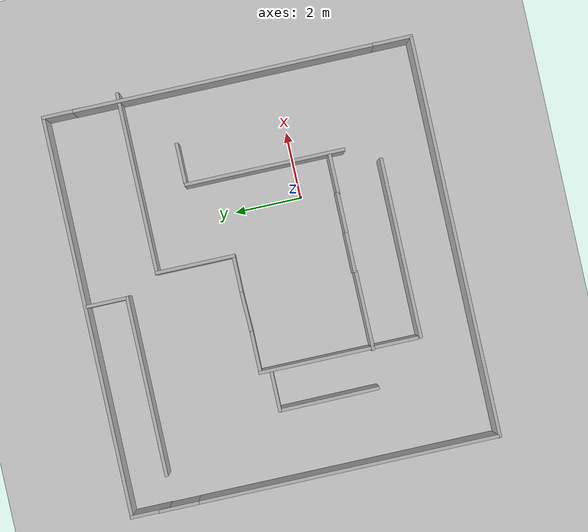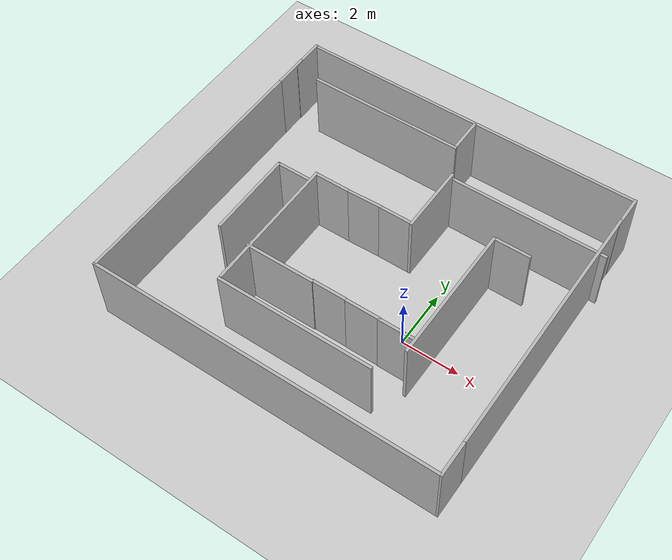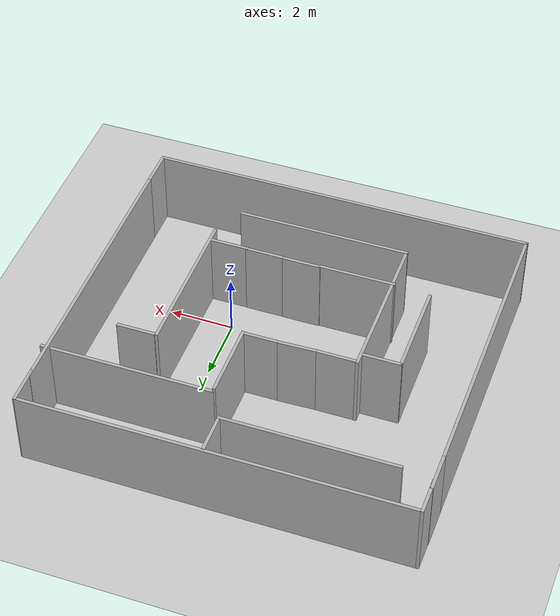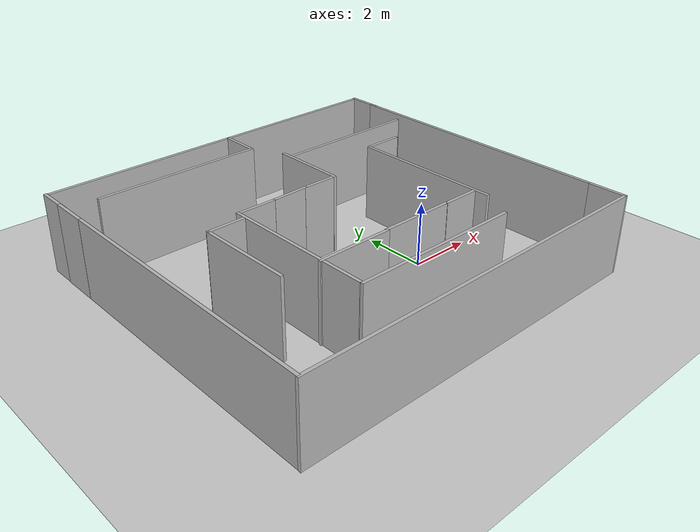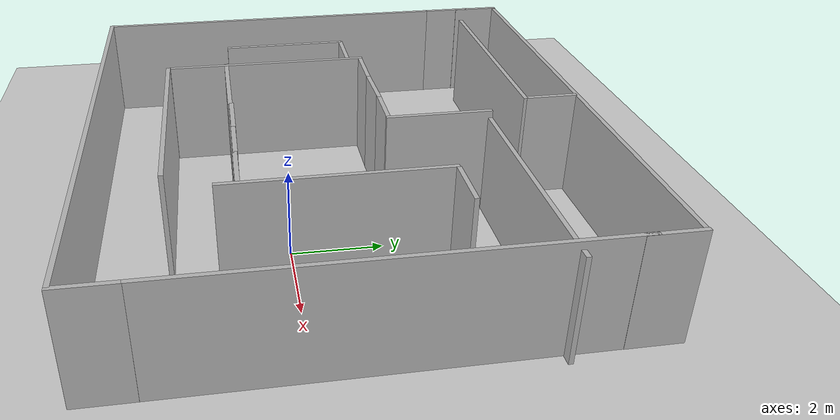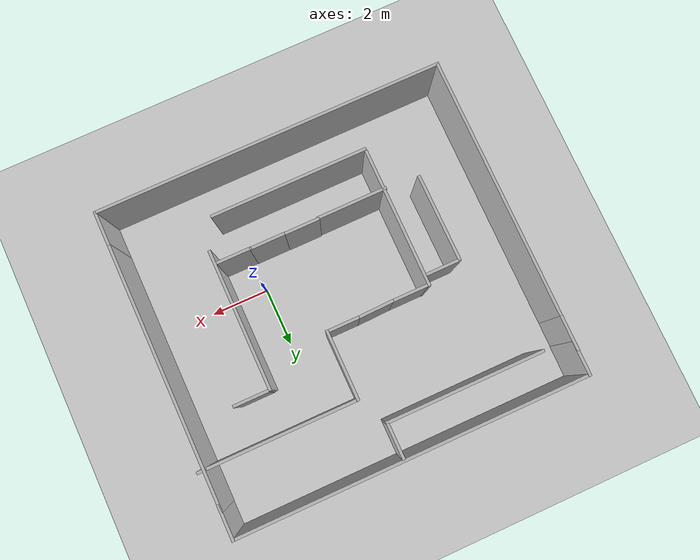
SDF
<sdf version="1.12">
 <world name="complex_maze">
  <physics name="1ms" type="ode">
   <max_step_size>0.001</max_step_size>
   <real_time_factor>1</real_time_factor>
   <real_time_update_rate>1000</real_time_update_rate>
  </physics>
  <plugin name="gz::sim::systems::Physics" filename="gz-sim-physics-system"/>
  <plugin name="gz::sim::systems::UserCommands" filename="gz-sim-user-commands-system"/>
  <plugin name="gz::sim::systems::SceneBroadcaster" filename="gz-sim-scene-broadcaster-system"/>
  <plugin name="gz::sim::systems::Contact" filename="gz-sim-contact-system"/>
  <plugin name="gz::sim::systems::Sensors" filename="gz-sim-sensors-system">
   <render_engine>ogre2</render_engine>
  </plugin>
  <gravity>0 0 -9.8000000000000007</gravity>
  <magnetic_field>5.5644999999999998e-06 2.2875799999999999e-05 -4.2388400000000002e-05</magnetic_field>
  <atmosphere type="adiabatic"/>
  <scene>
   <ambient>0.400000006 0.400000006 0.400000006 1</ambient>
   <background>0.699999988 0.699999988 0.699999988 1</background>
   <shadows>true</shadows>
  </scene>
  <model name="ground_plane">
   <static>true</static>
   <link name="link">
    <collision name="collision">
     <geometry><plane><normal>0 0 1</normal><size>100 100</size></plane></geometry>
    </collision>
    <visual name="visual">
     <geometry><plane><normal>0 0 1</normal><size>100 100</size></plane></geometry>
     <material>
      <ambient>0.800000012 0.800000012 0.800000012 1</ambient>
      <diffuse>0.800000012 0.800000012 0.800000012 1</diffuse>
      <specular>0.800000012 0.800000012 0.800000012 1</specular>
     </material>
    </visual>
    <inertial>
     <mass>1</mass>
     <inertia><ixx>1</ixx><ixy>0</ixy><ixz>0</ixz><iyy>1</iyy><iyz>0</iyz><izz>1</izz></inertia>
    </inertial>
   </link>
  </model>
  <model name="wall_1">
   <static>true</static>
   <pose>-2.1466774940490723 -4.1259899139404297 1.25 0 0 0</pose>
   <link name="link">
    <collision name="collision">
     <geometry><box><size>12 0.10000000000000001 2.5</size></box></geometry>
    </collision>
    <visual name="visual"><geometry><box><size>12 0.10000000000000001 2.5</size></box></geometry></visual>
    <inertial>
     <mass>1</mass>
     <inertia><ixx>1</ixx><ixy>0</ixy><ixz>0</ixz><iyy>1</iyy><iyz>0</iyz><izz>1</izz></inertia>
    </inertial>
   </link>
  </model>
  <model name="wall_2">
   <static>true</static>
   <pose>-2.1007201671600342 6.8853597640991211 1.2329599857330322 0 0 0</pose>
   <link name="link">
    <collision name="collision">
     <geometry><box><size>12 0.10000000000000001 2.5</size></box></geometry>
    </collision>
    <visual name="visual"><geometry><box><size>12 0.10000000000000001 2.5</size></box></geometry></visual>
    <inertial>
     <mass>1</mass>
     <inertia><ixx>1</ixx><ixy>0</ixy><ixz>0</ixz><iyy>1</iyy><iyz>0</iyz><izz>1</izz></inertia>
    </inertial>
   </link>
  </model>
  <model name="wall_3">
   <static>true</static>
   <pose>-8.0898056030273438 0.37433874607086182 1.25 0 0 1.5708000357176291</pose>
   <link name="link">
    <collision name="collision"><geometry><box><size>9 0.10000000000000001 2.5</size></box></geometry></collision>
    <visual name="visual"><geometry><box><size>9 0.10000000000000001 2.5</size></box></geometry></visual>
    <inertial>
     <mass>1</mass>
     <inertia><ixx>1</ixx><ixy>0</ixy><ixz>0</ixz><iyy>1</iyy><iyz>0</iyz><izz>1</izz></inertia>
    </inertial>
   </link>
  </model>
  <model name="wall_4">
   <static>true</static>
   <pose>3.8716528415679932 1.5082967281341553 1.25 0 0 1.5708000357176291</pose>
   <link name="link">
    <collision name="collision"><geometry><box><size>9 0.10000000000000001 2.5</size></box></geometry></collision>
    <visual name="visual"><geometry><box><size>9 0.10000000000000001 2.5</size></box></geometry></visual>
    <inertial>
     <mass>1</mass>
     <inertia><ixx>1</ixx><ixy>0</ixy><ixz>0</ixz><iyy>1</iyy><iyz>0</iyz><izz>1</izz></inertia>
    </inertial>
   </link>
  </model>
  <model name="wall_5">
   <static>true</static>
   <pose>-2.1067399978637695 -2.4980301856994629 1.25 0 0 0</pose>
   <link name="link">
    <collision name="collision">
     <geometry><box><size>5.4000000000000004 0.10000000000000001 2.5</size></box></geometry>
    </collision>
    <visual name="visual">
     <geometry><box><size>5.4000000000000004 0.10000000000000001 2.5</size></box></geometry>
    </visual>
    <inertial>
     <mass>1</mass>
     <inertia><ixx>1</ixx><ixy>0</ixy><ixz>0</ixz><iyy>1</iyy><iyz>0</iyz><izz>1</izz></inertia>
    </inertial>
   </link>
  </model>
  <model name="wall_7">
   <static>true</static>
   <pose>-5.968717098236084 0.50473201274871826 1.25 0 0 -1.5650000312503098</pose>
   <link name="link">
    <collision name="collision"><geometry><box><size>3 0.10000000000000001 2.5</size></box></geometry></collision>
    <visual name="visual"><geometry><box><size>3 0.10000000000000001 2.5</size></box></geometry></visual>
    <inertial>
     <mass>1</mass>
     <inertia><ixx>1</ixx><ixy>0</ixy><ixz>0</ixz><iyy>1</iyy><iyz>0</iyz><izz>1</izz></inertia>
    </inertial>
   </link>
  </model>
  <model name="wall_8">
   <static>true</static>
   <pose>0.42423498630523682 -1.0545125007629395 1.25 0 0 0</pose>
   <link name="link">
    <collision name="collision">
     <geometry><box><size>1.2 0.10000000000000001 2.5</size></box></geometry>
    </collision>
    <visual name="visual"><geometry><box><size>1.2 0.10000000000000001 2.5</size></box></geometry></visual>
    <inertial>
     <mass>1</mass>
     <inertia><ixx>1</ixx><ixy>0</ixy><ixz>0</ixz><iyy>1</iyy><iyz>0</iyz><izz>1</izz></inertia>
    </inertial>
   </link>
  </model>
  <model name="wall_9">
   <static>true</static>
   <pose>-1.9096299409866333 -1.0346499681472778 1.25 0 0 0</pose>
   <link name="link">
    <collision name="collision">
     <geometry><box><size>1.2 0.10000000000000001 2.5</size></box></geometry>
    </collision>
    <visual name="visual"><geometry><box><size>1.2 0.10000000000000001 2.5</size></box></geometry></visual>
    <inertial>
     <mass>1</mass>
     <inertia><ixx>1</ixx><ixy>0</ixy><ixz>0</ixz><iyy>1</iyy><iyz>0</iyz><izz>1</izz></inertia>
    </inertial>
   </link>
  </model>
  <model name="wall_12">
   <static>true</static>
   <pose>-1.8222936391830444 2.3345799446105957 1.2493499517440796 0 0 0</pose>
   <link name="link">
    <collision name="collision">
     <geometry><box><size>1.2 0.10000000000000001 2.5</size></box></geometry>
    </collision>
    <visual name="visual"><geometry><box><size>1.2 0.10000000000000001 2.5</size></box></geometry></visual>
    <inertial>
     <mass>1</mass>
     <inertia><ixx>1</ixx><ixy>0</ixy><ixz>0</ixz><iyy>1</iyy><iyz>0</iyz><izz>1</izz></inertia>
    </inertial>
   </link>
  </model>
  <model name="wall_15">
   <static>true</static>
   <pose>-4.4435300827026367 5.6344208717346191 1.25 0 0 0</pose>
   <link name="link">
    <collision name="collision">
     <geometry><box><size>5.4000000000000004 0.10000000000000001 2.5</size></box></geometry>
    </collision>
    <visual name="visual">
     <geometry><box><size>5.4000000000000004 0.10000000000000001 2.5</size></box></geometry>
    </visual>
    <inertial>
     <mass>1</mass>
     <inertia><ixx>1</ixx><ixy>0</ixy><ixz>0</ixz><iyy>1</iyy><iyz>0</iyz><izz>1</izz></inertia>
    </inertial>
   </link>
  </model>
  <model name="wall_16">
   <static>true</static>
   <pose>1.4387199878692627 4.6325674057006836 1.0828399658203125 0 0 0</pose>
   <link name="link">
    <collision name="collision">
     <geometry><box><size>5.4000000000000004 0.10000000000000001 2.5</size></box></geometry>
    </collision>
    <visual name="visual">
     <geometry><box><size>5.4000000000000004 0.10000000000000001 2.5</size></box></geometry>
    </visual>
    <inertial>
     <mass>1</mass>
     <inertia><ixx>1</ixx><ixy>0</ixy><ixz>0</ixz><iyy>1</iyy><iyz>0</iyz><izz>1</izz></inertia>
    </inertial>
   </link>
  </model>
  <model name="wall_17">
   <static>true</static>
   <pose>-8.0921096801757812 5.4751520156860352 1.25 0 0 1.5708000357176291</pose>
   <link name="link">
    <collision name="collision">
     <geometry><box><size>1.2 0.10000000000000001 2.5</size></box></geometry>
    </collision>
    <visual name="visual"><geometry><box><size>1.2 0.10000000000000001 2.5</size></box></geometry></visual>
    <inertial>
     <mass>1</mass>
     <inertia><ixx>1</ixx><ixy>0</ixy><ixz>0</ixz><iyy>1</iyy><iyz>0</iyz><izz>1</izz></inertia>
    </inertial>
   </link>
  </model>
  <model name="wall_18">
   <static>true</static>
   <pose>-4.771111011505127 -0.038953732699155807 1.25 0 0 1.5708000357176291</pose>
   <link name="link">
    <collision name="collision">
     <geometry><box><size>4.7999999999999998 0.10000000000000001 2.5</size></box></geometry>
    </collision>
    <visual name="visual">
     <geometry><box><size>4.7999999999999998 0.10000000000000001 2.5</size></box></geometry>
    </visual>
    <inertial>
     <mass>1</mass>
     <inertia><ixx>1</ixx><ixy>0</ixy><ixz>0</ixz><iyy>1</iyy><iyz>0</iyz><izz>1</izz></inertia>
    </inertial>
   </link>
  </model>
  <model name="wall_20">
   <static>true</static>
   <pose>-2.9508388042449951 2.3195197582244873 1.25 0 0 0.030003099590766556</pose>
   <link name="link">
    <collision name="collision">
     <geometry><box><size>1.2 0.10000000000000001 2.5</size></box></geometry>
    </collision>
    <visual name="visual"><geometry><box><size>1.2 0.10000000000000001 2.5</size></box></geometry></visual>
    <inertial>
     <mass>1</mass>
     <inertia><ixx>1</ixx><ixy>0</ixy><ixz>0</ixz><iyy>1</iyy><iyz>0</iyz><izz>1</izz></inertia>
    </inertial>
   </link>
  </model>
  <model name="wall_21">
   <static>true</static>
   <pose>1.0673474073410034 0.87645971775054932 1.25 0 0 1.5708000357176291</pose>
   <link name="link">
    <collision name="collision">
     <geometry><box><size>4.7999999999999998 0.10000000000000001 2.5</size></box></geometry>
    </collision>
    <visual name="visual">
     <geometry><box><size>4.7999999999999998 0.10000000000000001 2.5</size></box></geometry>
    </visual>
    <inertial>
     <mass>1</mass>
     <inertia><ixx>1</ixx><ixy>0</ixy><ixz>0</ixz><iyy>1</iyy><iyz>0</iyz><izz>1</izz></inertia>
    </inertial>
   </link>
  </model>
  <model name="wall_22">
   <static>true</static>
   <pose>3.8784191608428955 6.3327898979187012 1.25 0 0 1.5708000357176291</pose>
   <link name="link">
    <collision name="collision">
     <geometry><box><size>1.2 0.10000000000000001 2.5</size></box></geometry>
    </collision>
    <visual name="visual"><geometry><box><size>1.2 0.10000000000000001 2.5</size></box></geometry></visual>
    <inertial>
     <mass>1</mass>
     <inertia><ixx>1</ixx><ixy>0</ixy><ixz>0</ixz><iyy>1</iyy><iyz>0</iyz><izz>1</izz></inertia>
    </inertial>
   </link>
  </model>
  <model name="wall_23">
   <static>true</static>
   <pose>-3.6568000316619873 -1.0644799470901489 1.25 0 0 0.0034538498982187404</pose>
   <link name="link">
    <collision name="collision">
     <geometry><box><size>2.3999999999999999 0.10000000000000001 2.5</size></box></geometry>
    </collision>
    <visual name="visual">
     <geometry><box><size>2.3999999999999999 0.10000000000000001 2.5</size></box></geometry>
    </visual>
    <inertial>
     <mass>1</mass>
     <inertia><ixx>1</ixx><ixy>0</ixy><ixz>0</ixz><iyy>1</iyy><iyz>0</iyz><izz>1</izz></inertia>
    </inertial>
   </link>
  </model>
  <model name="wall_24">
   <static>true</static>
   <pose>-1.2689155340194702 3.4815695285797119 1.25 0 0 1.5708000357176291</pose>
   <link name="link">
    <collision name="collision">
     <geometry><box><size>2.3999999999999999 0.10000000000000001 2.5</size></box></geometry>
    </collision>
    <visual name="visual">
     <geometry><box><size>2.3999999999999999 0.10000000000000001 2.5</size></box></geometry>
    </visual>
    <inertial>
     <mass>1</mass>
     <inertia><ixx>1</ixx><ixy>0</ixy><ixz>0</ixz><iyy>1</iyy><iyz>0</iyz><izz>1</izz></inertia>
    </inertial>
   </link>
  </model>
  <model name="wall_29">
   <static>true</static>
   <pose>3.871448278427124 -3.5751953125 1.25 0 0 1.5692999449605693</pose>
   <link name="link">
    <collision name="collision">
     <geometry><box><size>1.2 0.10000000000000001 2.5</size></box></geometry>
    </collision>
    <visual name="visual"><geometry><box><size>1.2 0.10000000000000001 2.5</size></box></geometry></visual>
    <inertial>
     <mass>1</mass>
     <inertia><ixx>1</ixx><ixy>0</ixy><ixz>0</ixz><iyy>1</iyy><iyz>0</iyz><izz>1</izz></inertia>
    </inertial>
   </link>
  </model>
  <model name="wall_35">
   <static>true</static>
   <pose>-8.0811777114868164 6.3377270698547363 1.2489800453186035 0 0 1.5708000357176291</pose>
   <link name="link">
    <collision name="collision">
     <geometry><box><size>1.2 0.10000000000000001 2.5</size></box></geometry>
    </collision>
    <visual name="visual"><geometry><box><size>1.2 0.10000000000000001 2.5</size></box></geometry></visual>
    <inertial>
     <mass>1</mass>
     <inertia><ixx>1</ixx><ixy>0</ixy><ixz>0</ixz><iyy>1</iyy><iyz>0</iyz><izz>1</izz></inertia>
    </inertial>
   </link>
  </model>
  <model name="wall_38">
   <static>true</static>
   <pose>-0.71510761976242065 -1.0426900386810303 1.25 0 0 0</pose>
   <link name="link">
    <collision name="collision">
     <geometry><box><size>1.2 0.10000000000000001 2.5</size></box></geometry>
    </collision>
    <visual name="visual"><geometry><box><size>1.2 0.10000000000000001 2.5</size></box></geometry></visual>
    <inertial>
     <mass>1</mass>
     <inertia><ixx>1</ixx><ixy>0</ixy><ixz>0</ixz><iyy>1</iyy><iyz>0</iyz><izz>1</izz></inertia>
    </inertial>
   </link>
  </model>
  <model name="wall_45">
   <static>true</static>
   <pose>-1.7927477359771729 6.2602601051330566 1.25 0 0 1.5708000357176291</pose>
   <link name="link">
    <collision name="collision">
     <geometry><box><size>1.2 0.10000000000000001 2.5</size></box></geometry>
    </collision>
    <visual name="visual"><geometry><box><size>1.2 0.10000000000000001 2.5</size></box></geometry></visual>
    <inertial>
     <mass>1</mass>
     <inertia><ixx>1</ixx><ixy>0</ixy><ixz>0</ixz><iyy>1</iyy><iyz>0</iyz><izz>1</izz></inertia>
    </inertial>
   </link>
  </model>
  <model name="wall_47">
   <static>true</static>
   <pose>-4.1284899711608887 2.3027501106262207 1.25 0 0 0</pose>
   <link name="link">
    <collision name="collision">
     <geometry><box><size>1.2 0.10000000000000001 2.5</size></box></geometry>
    </collision>
    <visual name="visual"><geometry><box><size>1.2 0.10000000000000001 2.5</size></box></geometry></visual>
    <inertial>
     <mass>1</mass>
     <inertia><ixx>1</ixx><ixy>0</ixy><ixz>0</ixz><iyy>1</iyy><iyz>0</iyz><izz>1</izz></inertia>
    </inertial>
   </link>
  </model>
  <model name="wall_48">
   <static>true</static>
   <pose>1.7129529714584351 3.2459299564361572 1.25 0 0 0</pose>
   <link name="link">
    <collision name="collision">
     <geometry><box><size>1.2 0.10000000000000001 2.5</size></box></geometry>
    </collision>
    <visual name="visual"><geometry><box><size>1.2 0.10000000000000001 2.5</size></box></geometry></visual>
    <inertial>
     <mass>1</mass>
     <inertia><ixx>1</ixx><ixy>0</ixy><ixz>0</ixz><iyy>1</iyy><iyz>0</iyz><izz>1</izz></inertia>
    </inertial>
   </link>
  </model>
  <model name="wall_44_1">
   <static>true</static>
   <pose>-5.416140079498291 1.9863988161087036 1.25 0 0 0</pose>
   <link name="link">
    <collision name="collision">
     <geometry><box><size>1.2 0.10000000000000001 2.5</size></box></geometry>
    </collision>
    <visual name="visual"><geometry><box><size>1.2 0.10000000000000001 2.5</size></box></geometry></visual>
    <inertial>
     <mass>1</mass>
     <inertia><ixx>1</ixx><ixy>0</ixy><ixz>0</ixz><iyy>1</iyy><iyz>0</iyz><izz>1</izz></inertia>
    </inertial>
   </link>
  </model>
  <light name="sun" type="directional">
   <pose>0 0 10 0 0 0</pose>
   <intensity>1</intensity>
   <direction>-0.5 0.10000000000000001 -0.90000000000000002</direction>
   <diffuse>0.800000012 0.800000012 0.800000012 1</diffuse>
   <specular>0.200000003 0.200000003 0.200000003 1</specular>
   <attenuation>
    <range>1000</range>
    <linear>0.0099999997764825821</linear>
    <constant>0.89999997615814209</constant>
    <quadratic>0.0010000000474974513</quadratic>
   </attenuation>
   <spot><inner_angle>0</inner_angle><outer_angle>0</outer_angle><falloff>0</falloff></spot>
  </light>
 </world>
</sdf>
